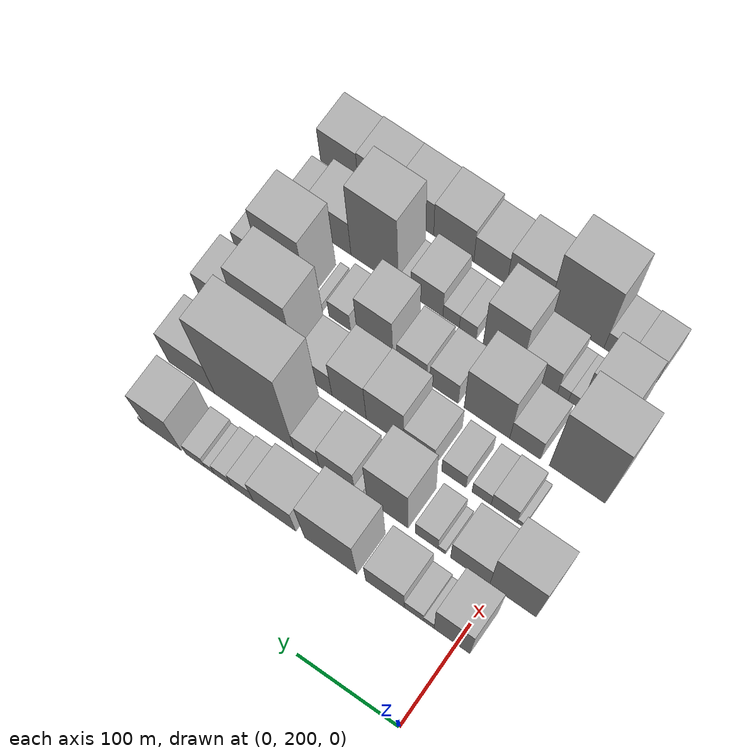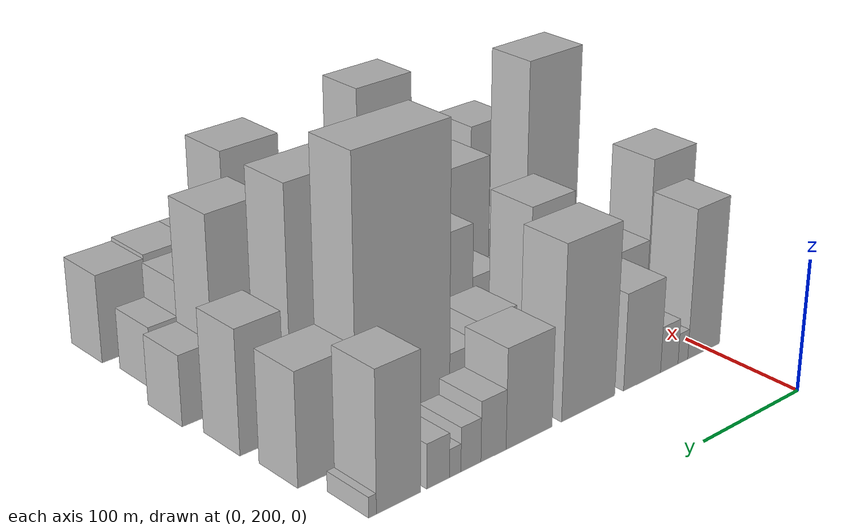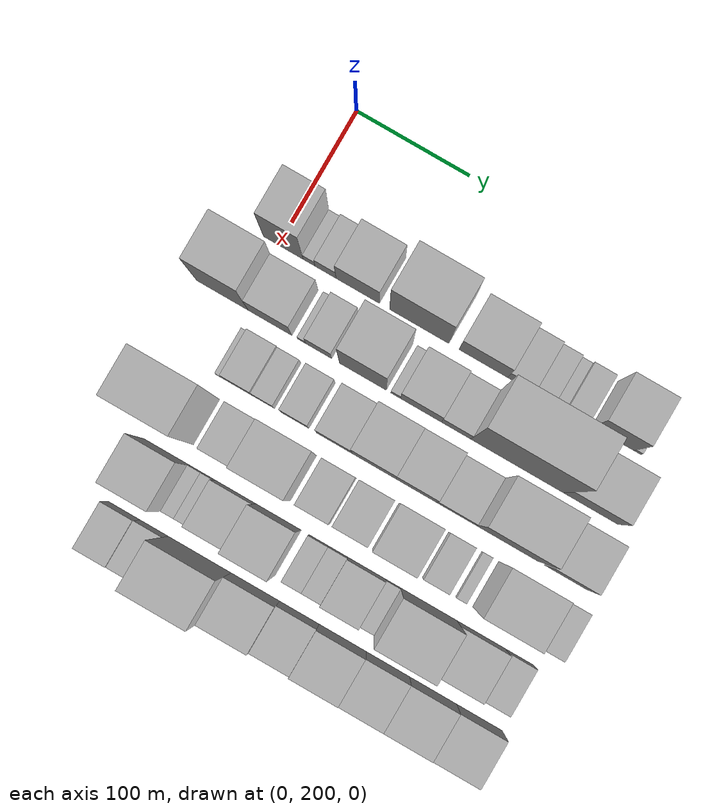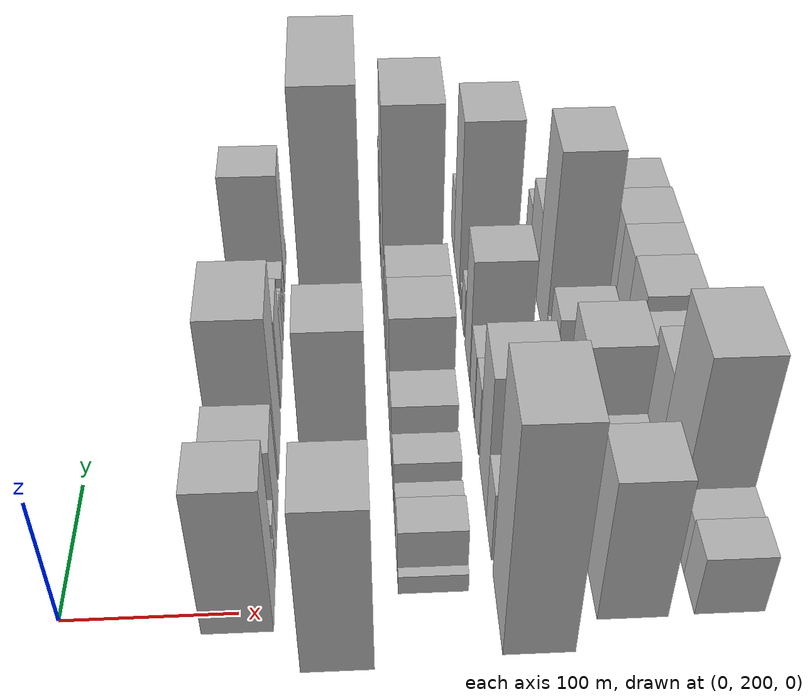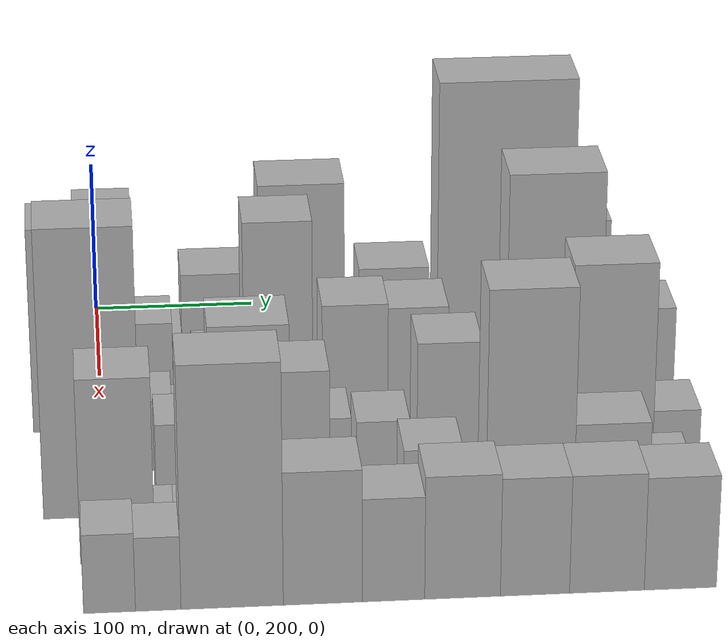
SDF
<sdf version="1.6">
 <world name="default">
  <model name="building_29">
   <static>1</static>
   <pose>100.0000 204.4119 0 0.000000 0.000000 0.000000</pose>
   <link name="link">
    <pose>0 0 58.50 0 0 0</pose>
    <collision name="collision"><geometry><box><size>40.0000 35.1048 117.0000</size></box></geometry></collision>
    <visual name="visual">
     <cast_shadows>0</cast_shadows>
     <geometry><box><size>40.0000 35.1048 117.0000</size></box></geometry>
     <material>
      <script>
       <uri>model://HANNAS_wall/materials/scripts</uri>
       <uri>model://HANNAS_wall/materials/textures</uri>
       <name>vrc/HANNAS_wall</name>
      </script>
     </material>
    </visual>
   </link>
  </model>
  <model name="building_30">
   <static>1</static>
   <pose>100.0000 227.2108 0 0.000000 0.000000 0.000000</pose>
   <link name="link">
    <pose>0 0 12.00 0 0 0</pose>
    <collision name="collision"><geometry><box><size>40.0000 10.4929 24.0000</size></box></geometry></collision>
    <visual name="visual">
     <cast_shadows>0</cast_shadows>
     <geometry><box><size>40.0000 10.4929 24.0000</size></box></geometry>
     <material>
      <script>
       <uri>model://HANNAS_wall/materials/scripts</uri>
       <uri>model://HANNAS_wall/materials/textures</uri>
       <name>vrc/HANNAS_wall</name>
      </script>
     </material>
    </visual>
   </link>
  </model>
  <model name="building_31">
   <static>1</static>
   <pose>100.0000 241.8036 0 0.000000 0.000000 0.000000</pose>
   <link name="link">
    <pose>0 0 18.00 0 0 0</pose>
    <collision name="collision"><geometry><box><size>40.0000 18.6928 36.0000</size></box></geometry></collision>
    <visual name="visual">
     <cast_shadows>0</cast_shadows>
     <geometry><box><size>40.0000 18.6928 36.0000</size></box></geometry>
     <material>
      <script>
       <uri>model://HANNAS_wall/materials/scripts</uri>
       <uri>model://HANNAS_wall/materials/textures</uri>
       <name>vrc/HANNAS_wall</name>
      </script>
     </material>
    </visual>
   </link>
  </model>
  <model name="building_32">
   <static>1</static>
   <pose>100.0000 270.3446 0 0.000000 0.000000 0.000000</pose>
   <link name="link">
    <pose>0 0 37.50 0 0 0</pose>
    <collision name="collision"><geometry><box><size>40.0000 38.3891 75.0000</size></box></geometry></collision>
    <visual name="visual">
     <cast_shadows>0</cast_shadows>
     <geometry><box><size>40.0000 38.3891 75.0000</size></box></geometry>
     <material>
      <script>
       <uri>model://HANNAS_wall/materials/scripts</uri>
       <uri>model://HANNAS_wall/materials/textures</uri>
       <name>vrc/HANNAS_wall</name>
      </script>
     </material>
    </visual>
   </link>
  </model>
  <model name="building_33">
   <static>1</static>
   <pose>100.0000 324.7302 0 0.000000 0.000000 0.000000</pose>
   <link name="link">
    <pose>0 0 66.00 0 0 0</pose>
    <collision name="collision"><geometry><box><size>40.0000 52.3822 132.0000</size></box></geometry></collision>
    <visual name="visual">
     <cast_shadows>0</cast_shadows>
     <geometry><box><size>40.0000 52.3822 132.0000</size></box></geometry>
     <material>
      <script>
       <uri>model://HANNAS_wall/materials/scripts</uri>
       <uri>model://HANNAS_wall/materials/textures</uri>
       <name>vrc/HANNAS_wall</name>
      </script>
     </material>
    </visual>
   </link>
  </model>
  <model name="building_34">
   <static>1</static>
   <pose>100.0000 381.3301 0 0.000000 0.000000 0.000000</pose>
   <link name="link">
    <pose>0 0 37.50 0 0 0</pose>
    <collision name="collision"><geometry><box><size>40.0000 42.8177 75.0000</size></box></geometry></collision>
    <visual name="visual">
     <cast_shadows>0</cast_shadows>
     <geometry><box><size>40.0000 42.8177 75.0000</size></box></geometry>
     <material>
      <script>
       <uri>model://HANNAS_wall/materials/scripts</uri>
       <uri>model://HANNAS_wall/materials/textures</uri>
       <name>vrc/HANNAS_wall</name>
      </script>
     </material>
    </visual>
   </link>
  </model>
  <model name="building_35">
   <static>1</static>
   <pose>100.0000 414.0542 0 0.000000 0.000000 0.000000</pose>
   <link name="link">
    <pose>0 0 22.50 0 0 0</pose>
    <collision name="collision"><geometry><box><size>40.0000 22.6305 45.0000</size></box></geometry></collision>
    <visual name="visual">
     <cast_shadows>0</cast_shadows>
     <geometry><box><size>40.0000 22.6305 45.0000</size></box></geometry>
     <material>
      <script>
       <uri>model://HANNAS_wall/materials/scripts</uri>
       <uri>model://HANNAS_wall/materials/textures</uri>
       <name>vrc/HANNAS_wall</name>
      </script>
     </material>
    </visual>
   </link>
  </model>
  <model name="building_36">
   <static>1</static>
   <pose>100.0000 434.1898 0 0.000000 0.000000 0.000000</pose>
   <link name="link">
    <pose>0 0 16.50 0 0 0</pose>
    <collision name="collision"><geometry><box><size>40.0000 17.6406 33.0000</size></box></geometry></collision>
    <visual name="visual">
     <cast_shadows>0</cast_shadows>
     <geometry><box><size>40.0000 17.6406 33.0000</size></box></geometry>
     <material>
      <script>
       <uri>model://HANNAS_wall/materials/scripts</uri>
       <uri>model://HANNAS_wall/materials/textures</uri>
       <name>vrc/HANNAS_wall</name>
      </script>
     </material>
    </visual>
   </link>
  </model>
  <model name="building_37">
   <static>1</static>
   <pose>100.0000 447.9389 0 0.000000 0.000000 0.000000</pose>
   <link name="link">
    <pose>0 0 10.50 0 0 0</pose>
    <collision name="collision"><geometry><box><size>40.0000 9.8575 21.0000</size></box></geometry></collision>
    <visual name="visual">
     <cast_shadows>0</cast_shadows>
     <geometry><box><size>40.0000 9.8575 21.0000</size></box></geometry>
     <material>
      <script>
       <uri>model://HANNAS_wall/materials/scripts</uri>
       <uri>model://HANNAS_wall/materials/textures</uri>
       <name>vrc/HANNAS_wall</name>
      </script>
     </material>
    </visual>
   </link>
  </model>
  <model name="building_38">
   <static>1</static>
   <pose>100.0000 462.6290 0 0.000000 0.000000 0.000000</pose>
   <link name="link">
    <pose>0 0 16.50 0 0 0</pose>
    <collision name="collision"><geometry><box><size>40.0000 19.5228 33.0000</size></box></geometry></collision>
    <visual name="visual">
     <cast_shadows>0</cast_shadows>
     <geometry><box><size>40.0000 19.5228 33.0000</size></box></geometry>
     <material>
      <script>
       <uri>model://HANNAS_wall/materials/scripts</uri>
       <uri>model://HANNAS_wall/materials/textures</uri>
       <name>vrc/HANNAS_wall</name>
      </script>
     </material>
    </visual>
   </link>
  </model>
  <model name="building_39">
   <static>1</static>
   <pose>100.0000 495.7797 0 0.000000 0.000000 0.000000</pose>
   <link name="link">
    <pose>0 0 51.00 0 0 0</pose>
    <collision name="collision"><geometry><box><size>40.0000 36.7786 102.0000</size></box></geometry></collision>
    <visual name="visual">
     <cast_shadows>0</cast_shadows>
     <geometry><box><size>40.0000 36.7786 102.0000</size></box></geometry>
     <material>
      <script>
       <uri>model://HANNAS_wall/materials/scripts</uri>
       <uri>model://HANNAS_wall/materials/textures</uri>
       <name>vrc/HANNAS_wall</name>
      </script>
     </material>
    </visual>
   </link>
  </model>
  <model name="building_40">
   <static>1</static>
   <pose>100.0000 517.2920 0 0.000000 0.000000 0.000000</pose>
   <link name="link">
    <pose>0 0 7.50 0 0 0</pose>
    <collision name="collision"><geometry><box><size>40.0000 6.2460 15.0000</size></box></geometry></collision>
    <visual name="visual">
     <cast_shadows>0</cast_shadows>
     <geometry><box><size>40.0000 6.2460 15.0000</size></box></geometry>
     <material>
      <script>
       <uri>model://HANNAS_wall/materials/scripts</uri>
       <uri>model://HANNAS_wall/materials/textures</uri>
       <name>vrc/HANNAS_wall</name>
      </script>
     </material>
    </visual>
   </link>
  </model>
  <model name="building_81">
   <static>1</static>
   <pose>155.0000 182.5484 0 0.000000 0.000000 0.000000</pose>
   <link name="link">
    <pose>0 0 66.00 0 0 0</pose>
    <collision name="collision"><geometry><box><size>40.0000 45.6640 132.0000</size></box></geometry></collision>
    <visual name="visual">
     <cast_shadows>0</cast_shadows>
     <geometry><box><size>40.0000 45.6640 132.0000</size></box></geometry>
     <material>
      <script>
       <uri>model://HANNAS_wall/materials/scripts</uri>
       <uri>model://HANNAS_wall/materials/textures</uri>
       <name>vrc/HANNAS_wall</name>
      </script>
     </material>
    </visual>
   </link>
  </model>
  <model name="building_82">
   <static>1</static>
   <pose>155.0000 224.6637 0 0.000000 0.000000 0.000000</pose>
   <link name="link">
    <pose>0 0 34.50 0 0 0</pose>
    <collision name="collision"><geometry><box><size>40.0000 38.5666 69.0000</size></box></geometry></collision>
    <visual name="visual">
     <cast_shadows>0</cast_shadows>
     <geometry><box><size>40.0000 38.5666 69.0000</size></box></geometry>
     <material>
      <script>
       <uri>model://HANNAS_wall/materials/scripts</uri>
       <uri>model://HANNAS_wall/materials/textures</uri>
       <name>vrc/HANNAS_wall</name>
      </script>
     </material>
    </visual>
   </link>
  </model>
  <model name="building_83">
   <static>1</static>
   <pose>155.0000 252.5712 0 0.000000 0.000000 0.000000</pose>
   <link name="link">
    <pose>0 0 7.50 0 0 0</pose>
    <collision name="collision"><geometry><box><size>40.0000 7.2485 15.0000</size></box></geometry></collision>
    <visual name="visual">
     <cast_shadows>0</cast_shadows>
     <geometry><box><size>40.0000 7.2485 15.0000</size></box></geometry>
     <material>
      <script>
       <uri>model://HANNAS_wall/materials/scripts</uri>
       <uri>model://HANNAS_wall/materials/textures</uri>
       <name>vrc/HANNAS_wall</name>
      </script>
     </material>
    </visual>
   </link>
  </model>
  <model name="building_84">
   <static>1</static>
   <pose>155.0000 267.7210 0 0.000000 0.000000 0.000000</pose>
   <link name="link">
    <pose>0 0 22.50 0 0 0</pose>
    <collision name="collision"><geometry><box><size>40.0000 23.0512 45.0000</size></box></geometry></collision>
    <visual name="visual">
     <cast_shadows>0</cast_shadows>
     <geometry><box><size>40.0000 23.0512 45.0000</size></box></geometry>
     <material>
      <script>
       <uri>model://HANNAS_wall/materials/scripts</uri>
       <uri>model://HANNAS_wall/materials/textures</uri>
       <name>vrc/HANNAS_wall</name>
      </script>
     </material>
    </visual>
   </link>
  </model>
  <model name="building_85">
   <static>1</static>
   <pose>155.0000 306.8475 0 0.000000 0.000000 0.000000</pose>
   <link name="link">
    <pose>0 0 66.00 0 0 0</pose>
    <collision name="collision"><geometry><box><size>40.0000 41.2019 132.0000</size></box></geometry></collision>
    <visual name="visual">
     <cast_shadows>0</cast_shadows>
     <geometry><box><size>40.0000 41.2019 132.0000</size></box></geometry>
     <material>
      <script>
       <uri>model://HANNAS_wall/materials/scripts</uri>
       <uri>model://HANNAS_wall/materials/textures</uri>
       <name>vrc/HANNAS_wall</name>
      </script>
     </material>
    </visual>
   </link>
  </model>
  <model name="building_86">
   <static>1</static>
   <pose>155.0000 335.7751 0 0.000000 0.000000 0.000000</pose>
   <link name="link">
    <pose>0 0 10.50 0 0 0</pose>
    <collision name="collision"><geometry><box><size>40.0000 8.6532 21.0000</size></box></geometry></collision>
    <visual name="visual">
     <cast_shadows>0</cast_shadows>
     <geometry><box><size>40.0000 8.6532 21.0000</size></box></geometry>
     <material>
      <script>
       <uri>model://HANNAS_wall/materials/scripts</uri>
       <uri>model://HANNAS_wall/materials/textures</uri>
       <name>vrc/HANNAS_wall</name>
      </script>
     </material>
    </visual>
   </link>
  </model>
  <model name="building_87">
   <static>1</static>
   <pose>155.0000 358.0737 0 0.000000 0.000000 0.000000</pose>
   <link name="link">
    <pose>0 0 31.50 0 0 0</pose>
    <collision name="collision"><geometry><box><size>40.0000 35.9441 63.0000</size></box></geometry></collision>
    <visual name="visual">
     <cast_shadows>0</cast_shadows>
     <geometry><box><size>40.0000 35.9441 63.0000</size></box></geometry>
     <material>
      <script>
       <uri>model://HANNAS_wall/materials/scripts</uri>
       <uri>model://HANNAS_wall/materials/textures</uri>
       <name>vrc/HANNAS_wall</name>
      </script>
     </material>
    </visual>
   </link>
  </model>
  <model name="building_88">
   <static>1</static>
   <pose>155.0000 389.0352 0 0.000000 0.000000 0.000000</pose>
   <link name="link">
    <pose>0 0 24.00 0 0 0</pose>
    <collision name="collision"><geometry><box><size>40.0000 25.9788 48.0000</size></box></geometry></collision>
    <visual name="visual">
     <cast_shadows>0</cast_shadows>
     <geometry><box><size>40.0000 25.9788 48.0000</size></box></geometry>
     <material>
      <script>
       <uri>model://HANNAS_wall/materials/scripts</uri>
       <uri>model://HANNAS_wall/materials/textures</uri>
       <name>vrc/HANNAS_wall</name>
      </script>
     </material>
    </visual>
   </link>
  </model>
  <model name="building_89">
   <static>1</static>
   <pose>155.0000 442.8457 0 0.000000 0.000000 0.000000</pose>
   <link name="link">
    <pose>0 0 108.00 0 0 0</pose>
    <collision name="collision"><geometry><box><size>40.0000 81.6422 216.0000</size></box></geometry></collision>
    <visual name="visual">
     <cast_shadows>0</cast_shadows>
     <geometry><box><size>40.0000 81.6422 216.0000</size></box></geometry>
     <material>
      <script>
       <uri>model://HANNAS_wall/materials/scripts</uri>
       <uri>model://HANNAS_wall/materials/textures</uri>
       <name>vrc/HANNAS_wall</name>
      </script>
     </material>
    </visual>
   </link>
  </model>
  <model name="building_90">
   <static>1</static>
   <pose>155.0000 507.8273 0 0.000000 0.000000 0.000000</pose>
   <link name="link">
    <pose>0 0 42.00 0 0 0</pose>
    <collision name="collision"><geometry><box><size>40.0000 48.3212 84.0000</size></box></geometry></collision>
    <visual name="visual">
     <cast_shadows>0</cast_shadows>
     <geometry><box><size>40.0000 48.3212 84.0000</size></box></geometry>
     <material>
      <script>
       <uri>model://HANNAS_wall/materials/scripts</uri>
       <uri>model://HANNAS_wall/materials/textures</uri>
       <name>vrc/HANNAS_wall</name>
      </script>
     </material>
    </visual>
   </link>
  </model>
  <model name="building_136">
   <static>1</static>
   <pose>210.0000 212.2609 0 0.000000 0.000000 0.000000</pose>
   <link name="link">
    <pose>0 0 7.50 0 0 0</pose>
    <collision name="collision"><geometry><box><size>40.0000 6.9595 15.0000</size></box></geometry></collision>
    <visual name="visual">
     <cast_shadows>0</cast_shadows>
     <geometry><box><size>40.0000 6.9595 15.0000</size></box></geometry>
     <material>
      <script>
       <uri>model://HANNAS_wall/materials/scripts</uri>
       <uri>model://HANNAS_wall/materials/textures</uri>
       <name>vrc/HANNAS_wall</name>
      </script>
     </material>
    </visual>
   </link>
  </model>
  <model name="building_137">
   <static>1</static>
   <pose>210.0000 228.6387 0 0.000000 0.000000 0.000000</pose>
   <link name="link">
    <pose>0 0 22.50 0 0 0</pose>
    <collision name="collision"><geometry><box><size>40.0000 25.7962 45.0000</size></box></geometry></collision>
    <visual name="visual">
     <cast_shadows>0</cast_shadows>
     <geometry><box><size>40.0000 25.7962 45.0000</size></box></geometry>
     <material>
      <script>
       <uri>model://HANNAS_wall/materials/scripts</uri>
       <uri>model://HANNAS_wall/materials/textures</uri>
       <name>vrc/HANNAS_wall</name>
      </script>
     </material>
    </visual>
   </link>
  </model>
  <model name="building_138">
   <static>1</static>
   <pose>210.0000 251.1076 0 0.000000 0.000000 0.000000</pose>
   <link name="link">
    <pose>0 0 18.00 0 0 0</pose>
    <collision name="collision"><geometry><box><size>40.0000 19.1416 36.0000</size></box></geometry></collision>
    <visual name="visual">
     <cast_shadows>0</cast_shadows>
     <geometry><box><size>40.0000 19.1416 36.0000</size></box></geometry>
     <material>
      <script>
       <uri>model://HANNAS_wall/materials/scripts</uri>
       <uri>model://HANNAS_wall/materials/textures</uri>
       <name>vrc/HANNAS_wall</name>
      </script>
     </material>
    </visual>
   </link>
  </model>
  <model name="building_139">
   <static>1</static>
   <pose>210.0000 278.8732 0 0.000000 0.000000 0.000000</pose>
   <link name="link">
    <pose>0 0 22.50 0 0 0</pose>
    <collision name="collision"><geometry><box><size>40.0000 24.3896 45.0000</size></box></geometry></collision>
    <visual name="visual">
     <cast_shadows>0</cast_shadows>
     <geometry><box><size>40.0000 24.3896 45.0000</size></box></geometry>
     <material>
      <script>
       <uri>model://HANNAS_wall/materials/scripts</uri>
       <uri>model://HANNAS_wall/materials/textures</uri>
       <name>vrc/HANNAS_wall</name>
      </script>
     </material>
    </visual>
   </link>
  </model>
  <model name="building_140">
   <static>1</static>
   <pose>210.0000 313.6063 0 0.000000 0.000000 0.000000</pose>
   <link name="link">
    <pose>0 0 30.00 0 0 0</pose>
    <collision name="collision"><geometry><box><size>40.0000 31.0766 60.0000</size></box></geometry></collision>
    <visual name="visual">
     <cast_shadows>0</cast_shadows>
     <geometry><box><size>40.0000 31.0766 60.0000</size></box></geometry>
     <material>
      <script>
       <uri>model://HANNAS_wall/materials/scripts</uri>
       <uri>model://HANNAS_wall/materials/textures</uri>
       <name>vrc/HANNAS_wall</name>
      </script>
     </material>
    </visual>
   </link>
  </model>
  <model name="building_141">
   <static>1</static>
   <pose>210.0000 348.3318 0 0.000000 0.000000 0.000000</pose>
   <link name="link">
    <pose>0 0 51.00 0 0 0</pose>
    <collision name="collision"><geometry><box><size>40.0000 38.3745 102.0000</size></box></geometry></collision>
    <visual name="visual">
     <cast_shadows>0</cast_shadows>
     <geometry><box><size>40.0000 38.3745 102.0000</size></box></geometry>
     <material>
      <script>
       <uri>model://HANNAS_wall/materials/scripts</uri>
       <uri>model://HANNAS_wall/materials/textures</uri>
       <name>vrc/HANNAS_wall</name>
      </script>
     </material>
    </visual>
   </link>
  </model>
  <model name="building_142">
   <static>1</static>
   <pose>210.0000 385.1033 0 0.000000 0.000000 0.000000</pose>
   <link name="link">
    <pose>0 0 49.50 0 0 0</pose>
    <collision name="collision"><geometry><box><size>40.0000 35.1685 99.0000</size></box></geometry></collision>
    <visual name="visual">
     <cast_shadows>0</cast_shadows>
     <geometry><box><size>40.0000 35.1685 99.0000</size></box></geometry>
     <material>
      <script>
       <uri>model://HANNAS_wall/materials/scripts</uri>
       <uri>model://HANNAS_wall/materials/textures</uri>
       <name>vrc/HANNAS_wall</name>
      </script>
     </material>
    </visual>
   </link>
  </model>
  <model name="building_143">
   <static>1</static>
   <pose>210.0000 419.7979 0 0.000000 0.000000 0.000000</pose>
   <link name="link">
    <pose>0 0 30.00 0 0 0</pose>
    <collision name="collision"><geometry><box><size>40.0000 34.2205 60.0000</size></box></geometry></collision>
    <visual name="visual">
     <cast_shadows>0</cast_shadows>
     <geometry><box><size>40.0000 34.2205 60.0000</size></box></geometry>
     <material>
      <script>
       <uri>model://HANNAS_wall/materials/scripts</uri>
       <uri>model://HANNAS_wall/materials/textures</uri>
       <name>vrc/HANNAS_wall</name>
      </script>
     </material>
    </visual>
   </link>
  </model>
  <model name="building_144">
   <static>1</static>
   <pose>210.0000 464.9302 0 0.000000 0.000000 0.000000</pose>
   <link name="link">
    <pose>0 0 90.00 0 0 0</pose>
    <collision name="collision"><geometry><box><size>40.0000 56.0441 180.0000</size></box></geometry></collision>
    <visual name="visual">
     <cast_shadows>0</cast_shadows>
     <geometry><box><size>40.0000 56.0441 180.0000</size></box></geometry>
     <material>
      <script>
       <uri>model://HANNAS_wall/materials/scripts</uri>
       <uri>model://HANNAS_wall/materials/textures</uri>
       <name>vrc/HANNAS_wall</name>
      </script>
     </material>
    </visual>
   </link>
  </model>
  <model name="building_145">
   <static>1</static>
   <pose>210.0000 517.4575 0 0.000000 0.000000 0.000000</pose>
   <link name="link">
    <pose>0 0 46.50 0 0 0</pose>
    <collision name="collision"><geometry><box><size>40.0000 37.0105 93.0000</size></box></geometry></collision>
    <visual name="visual">
     <cast_shadows>0</cast_shadows>
     <geometry><box><size>40.0000 37.0105 93.0000</size></box></geometry>
     <material>
      <script>
       <uri>model://HANNAS_wall/materials/scripts</uri>
       <uri>model://HANNAS_wall/materials/textures</uri>
       <name>vrc/HANNAS_wall</name>
      </script>
     </material>
    </visual>
   </link>
  </model>
  <model name="building_191">
   <static>1</static>
   <pose>265.0000 193.2132 0 0.000000 0.000000 0.000000</pose>
   <link name="link">
    <pose>0 0 90.00 0 0 0</pose>
    <collision name="collision"><geometry><box><size>40.0000 55.3399 180.0000</size></box></geometry></collision>
    <visual name="visual">
     <cast_shadows>0</cast_shadows>
     <geometry><box><size>40.0000 55.3399 180.0000</size></box></geometry>
     <material>
      <script>
       <uri>model://HANNAS_wall/materials/scripts</uri>
       <uri>model://HANNAS_wall/materials/textures</uri>
       <name>vrc/HANNAS_wall</name>
      </script>
     </material>
    </visual>
   </link>
  </model>
  <model name="building_192">
   <static>1</static>
   <pose>265.0000 245.2066 0 0.000000 0.000000 0.000000</pose>
   <link name="link">
    <pose>0 0 28.50 0 0 0</pose>
    <collision name="collision"><geometry><box><size>40.0000 30.6470 57.0000</size></box></geometry></collision>
    <visual name="visual">
     <cast_shadows>0</cast_shadows>
     <geometry><box><size>40.0000 30.6470 57.0000</size></box></geometry>
     <material>
      <script>
       <uri>model://HANNAS_wall/materials/scripts</uri>
       <uri>model://HANNAS_wall/materials/textures</uri>
       <name>vrc/HANNAS_wall</name>
      </script>
     </material>
    </visual>
   </link>
  </model>
  <model name="building_193">
   <static>1</static>
   <pose>265.0000 283.5510 0 0.000000 0.000000 0.000000</pose>
   <link name="link">
    <pose>0 0 58.50 0 0 0</pose>
    <collision name="collision"><geometry><box><size>40.0000 46.0418 117.0000</size></box></geometry></collision>
    <visual name="visual">
     <cast_shadows>0</cast_shadows>
     <geometry><box><size>40.0000 46.0418 117.0000</size></box></geometry>
     <material>
      <script>
       <uri>model://HANNAS_wall/materials/scripts</uri>
       <uri>model://HANNAS_wall/materials/textures</uri>
       <name>vrc/HANNAS_wall</name>
      </script>
     </material>
    </visual>
   </link>
  </model>
  <model name="building_194">
   <static>1</static>
   <pose>265.0000 327.0664 0 0.000000 0.000000 0.000000</pose>
   <link name="link">
    <pose>0 0 28.50 0 0 0</pose>
    <collision name="collision"><geometry><box><size>40.0000 28.9889 57.0000</size></box></geometry></collision>
    <visual name="visual">
     <cast_shadows>0</cast_shadows>
     <geometry><box><size>40.0000 28.9889 57.0000</size></box></geometry>
     <material>
      <script>
       <uri>model://HANNAS_wall/materials/scripts</uri>
       <uri>model://HANNAS_wall/materials/textures</uri>
       <name>vrc/HANNAS_wall</name>
      </script>
     </material>
    </visual>
   </link>
  </model>
  <model name="building_195">
   <static>1</static>
   <pose>265.0000 359.8601 0 0.000000 0.000000 0.000000</pose>
   <link name="link">
    <pose>0 0 27.00 0 0 0</pose>
    <collision name="collision"><geometry><box><size>40.0000 30.5984 54.0000</size></box></geometry></collision>
    <visual name="visual">
     <cast_shadows>0</cast_shadows>
     <geometry><box><size>40.0000 30.5984 54.0000</size></box></geometry>
     <material>
      <script>
       <uri>model://HANNAS_wall/materials/scripts</uri>
       <uri>model://HANNAS_wall/materials/textures</uri>
       <name>vrc/HANNAS_wall</name>
      </script>
     </material>
    </visual>
   </link>
  </model>
  <model name="building_196">
   <static>1</static>
   <pose>265.0000 397.5948 0 0.000000 0.000000 0.000000</pose>
   <link name="link">
    <pose>0 0 51.00 0 0 0</pose>
    <collision name="collision"><geometry><box><size>40.0000 36.8709 102.0000</size></box></geometry></collision>
    <visual name="visual">
     <cast_shadows>0</cast_shadows>
     <geometry><box><size>40.0000 36.8709 102.0000</size></box></geometry>
     <material>
      <script>
       <uri>model://HANNAS_wall/materials/scripts</uri>
       <uri>model://HANNAS_wall/materials/textures</uri>
       <name>vrc/HANNAS_wall</name>
      </script>
     </material>
    </visual>
   </link>
  </model>
  <model name="building_197">
   <static>1</static>
   <pose>265.0000 434.1832 0 0.000000 0.000000 0.000000</pose>
   <link name="link">
    <pose>0 0 21.00 0 0 0</pose>
    <collision name="collision"><geometry><box><size>40.0000 22.3060 42.0000</size></box></geometry></collision>
    <visual name="visual">
     <cast_shadows>0</cast_shadows>
     <geometry><box><size>40.0000 22.3060 42.0000</size></box></geometry>
     <material>
      <script>
       <uri>model://HANNAS_wall/materials/scripts</uri>
       <uri>model://HANNAS_wall/materials/textures</uri>
       <name>vrc/HANNAS_wall</name>
      </script>
     </material>
    </visual>
   </link>
  </model>
  <model name="building_198">
   <static>1</static>
   <pose>265.0000 456.7925 0 0.000000 0.000000 0.000000</pose>
   <link name="link">
    <pose>0 0 9.00 0 0 0</pose>
    <collision name="collision"><geometry><box><size>40.0000 8.9126 18.0000</size></box></geometry></collision>
    <visual name="visual">
     <cast_shadows>0</cast_shadows>
     <geometry><box><size>40.0000 8.9126 18.0000</size></box></geometry>
     <material>
      <script>
       <uri>model://HANNAS_wall/materials/scripts</uri>
       <uri>model://HANNAS_wall/materials/textures</uri>
       <name>vrc/HANNAS_wall</name>
      </script>
     </material>
    </visual>
   </link>
  </model>
  <model name="building_199">
   <static>1</static>
   <pose>265.0000 491.2502 0 0.000000 0.000000 0.000000</pose>
   <link name="link">
    <pose>0 0 73.50 0 0 0</pose>
    <collision name="collision"><geometry><box><size>40.0000 48.0027 147.0000</size></box></geometry></collision>
    <visual name="visual">
     <cast_shadows>0</cast_shadows>
     <geometry><box><size>40.0000 48.0027 147.0000</size></box></geometry>
     <material>
      <script>
       <uri>model://HANNAS_wall/materials/scripts</uri>
       <uri>model://HANNAS_wall/materials/textures</uri>
       <name>vrc/HANNAS_wall</name>
      </script>
     </material>
    </visual>
   </link>
  </model>
  <model name="building_200">
   <static>1</static>
   <pose>265.0000 528.8881 0 0.000000 0.000000 0.000000</pose>
   <link name="link">
    <pose>0 0 27.00 0 0 0</pose>
    <collision name="collision"><geometry><box><size>40.0000 27.2733 54.0000</size></box></geometry></collision>
    <visual name="visual">
     <cast_shadows>0</cast_shadows>
     <geometry><box><size>40.0000 27.2733 54.0000</size></box></geometry>
     <material>
      <script>
       <uri>model://HANNAS_wall/materials/scripts</uri>
       <uri>model://HANNAS_wall/materials/textures</uri>
       <name>vrc/HANNAS_wall</name>
      </script>
     </material>
    </visual>
   </link>
  </model>
  <model name="building_238">
   <static>1</static>
   <pose>320.0000 206.5613 0 0.000000 0.000000 0.000000</pose>
   <link name="link">
    <pose>0 0 57.00 0 0 0</pose>
    <collision name="collision"><geometry><box><size>40.0000 41.2893 114.0000</size></box></geometry></collision>
    <visual name="visual">
     <cast_shadows>0</cast_shadows>
     <geometry><box><size>40.0000 41.2893 114.0000</size></box></geometry>
     <material>
      <script>
       <uri>model://HANNAS_wall/materials/scripts</uri>
       <uri>model://HANNAS_wall/materials/textures</uri>
       <name>vrc/HANNAS_wall</name>
      </script>
     </material>
    </visual>
   </link>
  </model>
  <model name="building_239">
   <static>1</static>
   <pose>320.0000 232.8658 0 0.000000 0.000000 0.000000</pose>
   <link name="link">
    <pose>0 0 13.50 0 0 0</pose>
    <collision name="collision"><geometry><box><size>40.0000 11.3197 27.0000</size></box></geometry></collision>
    <visual name="visual">
     <cast_shadows>0</cast_shadows>
     <geometry><box><size>40.0000 11.3197 27.0000</size></box></geometry>
     <material>
      <script>
       <uri>model://HANNAS_wall/materials/scripts</uri>
       <uri>model://HANNAS_wall/materials/textures</uri>
       <name>vrc/HANNAS_wall</name>
      </script>
     </material>
    </visual>
   </link>
  </model>
  <model name="building_240">
   <static>1</static>
   <pose>320.0000 244.0967 0 0.000000 0.000000 0.000000</pose>
   <link name="link">
    <pose>0 0 13.50 0 0 0</pose>
    <collision name="collision"><geometry><box><size>40.0000 11.1420 27.0000</size></box></geometry></collision>
    <visual name="visual">
     <cast_shadows>0</cast_shadows>
     <geometry><box><size>40.0000 11.1420 27.0000</size></box></geometry>
     <material>
      <script>
       <uri>model://HANNAS_wall/materials/scripts</uri>
       <uri>model://HANNAS_wall/materials/textures</uri>
       <name>vrc/HANNAS_wall</name>
      </script>
     </material>
    </visual>
   </link>
  </model>
  <model name="building_241">
   <static>1</static>
   <pose>320.0000 267.6547 0 0.000000 0.000000 0.000000</pose>
   <link name="link">
    <pose>0 0 30.00 0 0 0</pose>
    <collision name="collision"><geometry><box><size>40.0000 35.9740 60.0000</size></box></geometry></collision>
    <visual name="visual">
     <cast_shadows>0</cast_shadows>
     <geometry><box><size>40.0000 35.9740 60.0000</size></box></geometry>
     <material>
      <script>
       <uri>model://HANNAS_wall/materials/scripts</uri>
       <uri>model://HANNAS_wall/materials/textures</uri>
       <name>vrc/HANNAS_wall</name>
      </script>
     </material>
    </visual>
   </link>
  </model>
  <model name="building_242">
   <static>1</static>
   <pose>320.0000 305.3657 0 0.000000 0.000000 0.000000</pose>
   <link name="link">
    <pose>0 0 57.00 0 0 0</pose>
    <collision name="collision"><geometry><box><size>40.0000 39.4480 114.0000</size></box></geometry></collision>
    <visual name="visual">
     <cast_shadows>0</cast_shadows>
     <geometry><box><size>40.0000 39.4480 114.0000</size></box></geometry>
     <material>
      <script>
       <uri>model://HANNAS_wall/materials/scripts</uri>
       <uri>model://HANNAS_wall/materials/textures</uri>
       <name>vrc/HANNAS_wall</name>
      </script>
     </material>
    </visual>
   </link>
  </model>
  <model name="building_243">
   <static>1</static>
   <pose>320.0000 340.8012 0 0.000000 0.000000 0.000000</pose>
   <link name="link">
    <pose>0 0 16.50 0 0 0</pose>
    <collision name="collision"><geometry><box><size>40.0000 17.4231 33.0000</size></box></geometry></collision>
    <visual name="visual">
     <cast_shadows>0</cast_shadows>
     <geometry><box><size>40.0000 17.4231 33.0000</size></box></geometry>
     <material>
      <script>
       <uri>model://HANNAS_wall/materials/scripts</uri>
       <uri>model://HANNAS_wall/materials/textures</uri>
       <name>vrc/HANNAS_wall</name>
      </script>
     </material>
    </visual>
   </link>
  </model>
  <model name="building_244">
   <static>1</static>
   <pose>320.0000 357.9153 0 0.000000 0.000000 0.000000</pose>
   <link name="link">
    <pose>0 0 16.50 0 0 0</pose>
    <collision name="collision"><geometry><box><size>40.0000 16.8050 33.0000</size></box></geometry></collision>
    <visual name="visual">
     <cast_shadows>0</cast_shadows>
     <geometry><box><size>40.0000 16.8050 33.0000</size></box></geometry>
     <material>
      <script>
       <uri>model://HANNAS_wall/materials/scripts</uri>
       <uri>model://HANNAS_wall/materials/textures</uri>
       <name>vrc/HANNAS_wall</name>
      </script>
     </material>
    </visual>
   </link>
  </model>
  <model name="building_245">
   <static>1</static>
   <pose>320.0000 382.8577 0 0.000000 0.000000 0.000000</pose>
   <link name="link">
    <pose>0 0 31.50 0 0 0</pose>
    <collision name="collision"><geometry><box><size>40.0000 33.0797 63.0000</size></box></geometry></collision>
    <visual name="visual">
     <cast_shadows>0</cast_shadows>
     <geometry><box><size>40.0000 33.0797 63.0000</size></box></geometry>
     <material>
      <script>
       <uri>model://HANNAS_wall/materials/scripts</uri>
       <uri>model://HANNAS_wall/materials/textures</uri>
       <name>vrc/HANNAS_wall</name>
      </script>
     </material>
    </visual>
   </link>
  </model>
  <model name="building_246">
   <static>1</static>
   <pose>320.0000 405.9255 0 0.000000 0.000000 0.000000</pose>
   <link name="link">
    <pose>0 0 13.50 0 0 0</pose>
    <collision name="collision"><geometry><box><size>40.0000 13.0560 27.0000</size></box></geometry></collision>
    <visual name="visual">
     <cast_shadows>0</cast_shadows>
     <geometry><box><size>40.0000 13.0560 27.0000</size></box></geometry>
     <material>
      <script>
       <uri>model://HANNAS_wall/materials/scripts</uri>
       <uri>model://HANNAS_wall/materials/textures</uri>
       <name>vrc/HANNAS_wall</name>
      </script>
     </material>
    </visual>
   </link>
  </model>
  <model name="building_247">
   <static>1</static>
   <pose>320.0000 437.2236 0 0.000000 0.000000 0.000000</pose>
   <link name="link">
    <pose>0 0 79.50 0 0 0</pose>
    <collision name="collision"><geometry><box><size>40.0000 49.5401 159.0000</size></box></geometry></collision>
    <visual name="visual">
     <cast_shadows>0</cast_shadows>
     <geometry><box><size>40.0000 49.5401 159.0000</size></box></geometry>
     <material>
      <script>
       <uri>model://HANNAS_wall/materials/scripts</uri>
       <uri>model://HANNAS_wall/materials/textures</uri>
       <name>vrc/HANNAS_wall</name>
      </script>
     </material>
    </visual>
   </link>
  </model>
  <model name="building_248">
   <static>1</static>
   <pose>320.0000 483.2397 0 0.000000 0.000000 0.000000</pose>
   <link name="link">
    <pose>0 0 37.50 0 0 0</pose>
    <collision name="collision"><geometry><box><size>40.0000 42.4920 75.0000</size></box></geometry></collision>
    <visual name="visual">
     <cast_shadows>0</cast_shadows>
     <geometry><box><size>40.0000 42.4920 75.0000</size></box></geometry>
     <material>
      <script>
       <uri>model://HANNAS_wall/materials/scripts</uri>
       <uri>model://HANNAS_wall/materials/textures</uri>
       <name>vrc/HANNAS_wall</name>
      </script>
     </material>
    </visual>
   </link>
  </model>
  <model name="building_249">
   <static>1</static>
   <pose>320.0000 516.6442 0 0.000000 0.000000 0.000000</pose>
   <link name="link">
    <pose>0 0 24.00 0 0 0</pose>
    <collision name="collision"><geometry><box><size>40.0000 24.3171 48.0000</size></box></geometry></collision>
    <visual name="visual">
     <cast_shadows>0</cast_shadows>
     <geometry><box><size>40.0000 24.3171 48.0000</size></box></geometry>
     <material>
      <script>
       <uri>model://HANNAS_wall/materials/scripts</uri>
       <uri>model://HANNAS_wall/materials/textures</uri>
       <name>vrc/HANNAS_wall</name>
      </script>
     </material>
    </visual>
   </link>
  </model>
  <model name="building_295">
   <static>1</static>
   <pose>375.0000 200.8795 0 0.000000 0.000000 0.000000</pose>
   <link name="link">
    <pose>0 0 24.00 0 0 0</pose>
    <collision name="collision"><geometry><box><size>40.0000 28.0589 48.0000</size></box></geometry></collision>
    <visual name="visual">
     <cast_shadows>0</cast_shadows>
     <geometry><box><size>40.0000 28.0589 48.0000</size></box></geometry>
     <material>
      <script>
       <uri>model://HANNAS_wall/materials/scripts</uri>
       <uri>model://HANNAS_wall/materials/textures</uri>
       <name>vrc/HANNAS_wall</name>
      </script>
     </material>
    </visual>
   </link>
  </model>
  <model name="building_296">
   <static>1</static>
   <pose>375.0000 227.2618 0 0.000000 0.000000 0.000000</pose>
   <link name="link">
    <pose>0 0 22.50 0 0 0</pose>
    <collision name="collision"><geometry><box><size>40.0000 24.7057 45.0000</size></box></geometry></collision>
    <visual name="visual">
     <cast_shadows>0</cast_shadows>
     <geometry><box><size>40.0000 24.7057 45.0000</size></box></geometry>
     <material>
      <script>
       <uri>model://HANNAS_wall/materials/scripts</uri>
       <uri>model://HANNAS_wall/materials/textures</uri>
       <name>vrc/HANNAS_wall</name>
      </script>
     </material>
    </visual>
   </link>
  </model>
  <model name="building_297">
   <static>1</static>
   <pose>375.0000 267.4524 0 0.000000 0.000000 0.000000</pose>
   <link name="link">
    <pose>0 0 73.50 0 0 0</pose>
    <collision name="collision"><geometry><box><size>40.0000 55.6757 147.0000</size></box></geometry></collision>
    <visual name="visual">
     <cast_shadows>0</cast_shadows>
     <geometry><box><size>40.0000 55.6757 147.0000</size></box></geometry>
     <material>
      <script>
       <uri>model://HANNAS_wall/materials/scripts</uri>
       <uri>model://HANNAS_wall/materials/textures</uri>
       <name>vrc/HANNAS_wall</name>
      </script>
     </material>
    </visual>
   </link>
  </model>
  <model name="building_298">
   <static>1</static>
   <pose>375.0000 316.8075 0 0.000000 0.000000 0.000000</pose>
   <link name="link">
    <pose>0 0 40.50 0 0 0</pose>
    <collision name="collision"><geometry><box><size>40.0000 43.0345 81.0000</size></box></geometry></collision>
    <visual name="visual">
     <cast_shadows>0</cast_shadows>
     <geometry><box><size>40.0000 43.0345 81.0000</size></box></geometry>
     <material>
      <script>
       <uri>model://HANNAS_wall/materials/scripts</uri>
       <uri>model://HANNAS_wall/materials/textures</uri>
       <name>vrc/HANNAS_wall</name>
      </script>
     </material>
    </visual>
   </link>
  </model>
  <model name="building_299">
   <static>1</static>
   <pose>375.0000 355.4810 0 0.000000 0.000000 0.000000</pose>
   <link name="link">
    <pose>0 0 31.50 0 0 0</pose>
    <collision name="collision"><geometry><box><size>40.0000 34.3125 63.0000</size></box></geometry></collision>
    <visual name="visual">
     <cast_shadows>0</cast_shadows>
     <geometry><box><size>40.0000 34.3125 63.0000</size></box></geometry>
     <material>
      <script>
       <uri>model://HANNAS_wall/materials/scripts</uri>
       <uri>model://HANNAS_wall/materials/textures</uri>
       <name>vrc/HANNAS_wall</name>
      </script>
     </material>
    </visual>
   </link>
  </model>
  <model name="building_300">
   <static>1</static>
   <pose>375.0000 393.4451 0 0.000000 0.000000 0.000000</pose>
   <link name="link">
    <pose>0 0 37.50 0 0 0</pose>
    <collision name="collision"><geometry><box><size>40.0000 41.6157 75.0000</size></box></geometry></collision>
    <visual name="visual">
     <cast_shadows>0</cast_shadows>
     <geometry><box><size>40.0000 41.6157 75.0000</size></box></geometry>
     <material>
      <script>
       <uri>model://HANNAS_wall/materials/scripts</uri>
       <uri>model://HANNAS_wall/materials/textures</uri>
       <name>vrc/HANNAS_wall</name>
      </script>
     </material>
    </visual>
   </link>
  </model>
  <model name="building_301">
   <static>1</static>
   <pose>375.0000 433.3287 0 0.000000 0.000000 0.000000</pose>
   <link name="link">
    <pose>0 0 36.00 0 0 0</pose>
    <collision name="collision"><geometry><box><size>40.0000 38.1515 72.0000</size></box></geometry></collision>
    <visual name="visual">
     <cast_shadows>0</cast_shadows>
     <geometry><box><size>40.0000 38.1515 72.0000</size></box></geometry>
     <material>
      <script>
       <uri>model://HANNAS_wall/materials/scripts</uri>
       <uri>model://HANNAS_wall/materials/textures</uri>
       <name>vrc/HANNAS_wall</name>
      </script>
     </material>
    </visual>
   </link>
  </model>
  <model name="building_302">
   <static>1</static>
   <pose>375.0000 473.0767 0 0.000000 0.000000 0.000000</pose>
   <link name="link">
    <pose>0 0 36.00 0 0 0</pose>
    <collision name="collision"><geometry><box><size>40.0000 41.3445 72.0000</size></box></geometry></collision>
    <visual name="visual">
     <cast_shadows>0</cast_shadows>
     <geometry><box><size>40.0000 41.3445 72.0000</size></box></geometry>
     <material>
      <script>
       <uri>model://HANNAS_wall/materials/scripts</uri>
       <uri>model://HANNAS_wall/materials/textures</uri>
       <name>vrc/HANNAS_wall</name>
      </script>
     </material>
    </visual>
   </link>
  </model>
  <model name="building_303">
   <static>1</static>
   <pose>375.0000 513.7630 0 0.000000 0.000000 0.000000</pose>
   <link name="link">
    <pose>0 0 34.50 0 0 0</pose>
    <collision name="collision"><geometry><box><size>40.0000 40.0282 69.0000</size></box></geometry></collision>
    <visual name="visual">
     <cast_shadows>0</cast_shadows>
     <geometry><box><size>40.0000 40.0282 69.0000</size></box></geometry>
     <material>
      <script>
       <uri>model://HANNAS_wall/materials/scripts</uri>
       <uri>model://HANNAS_wall/materials/textures</uri>
       <name>vrc/HANNAS_wall</name>
      </script>
     </material>
    </visual>
   </link>
  </model>
 </world>
</sdf>
